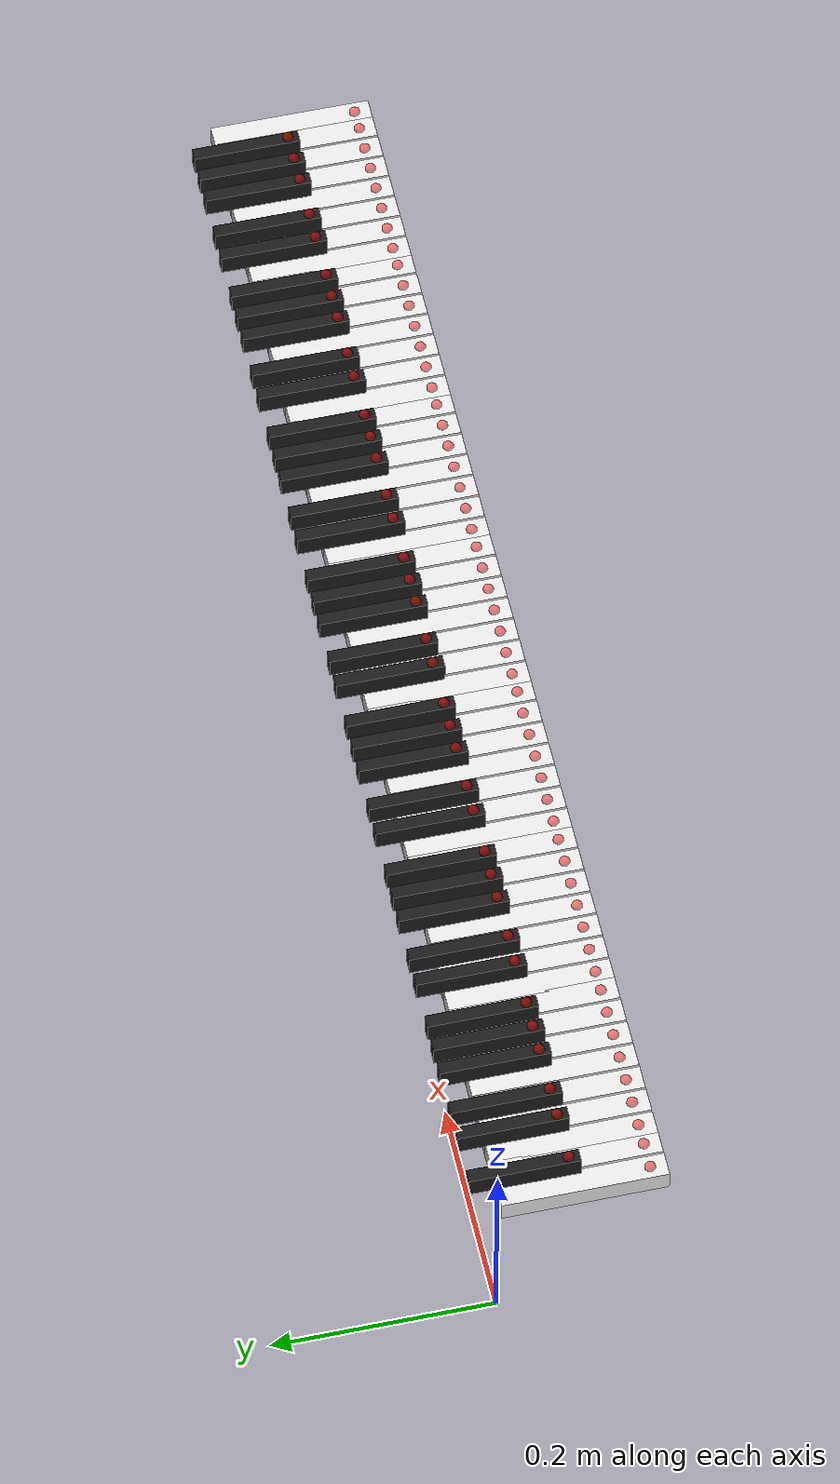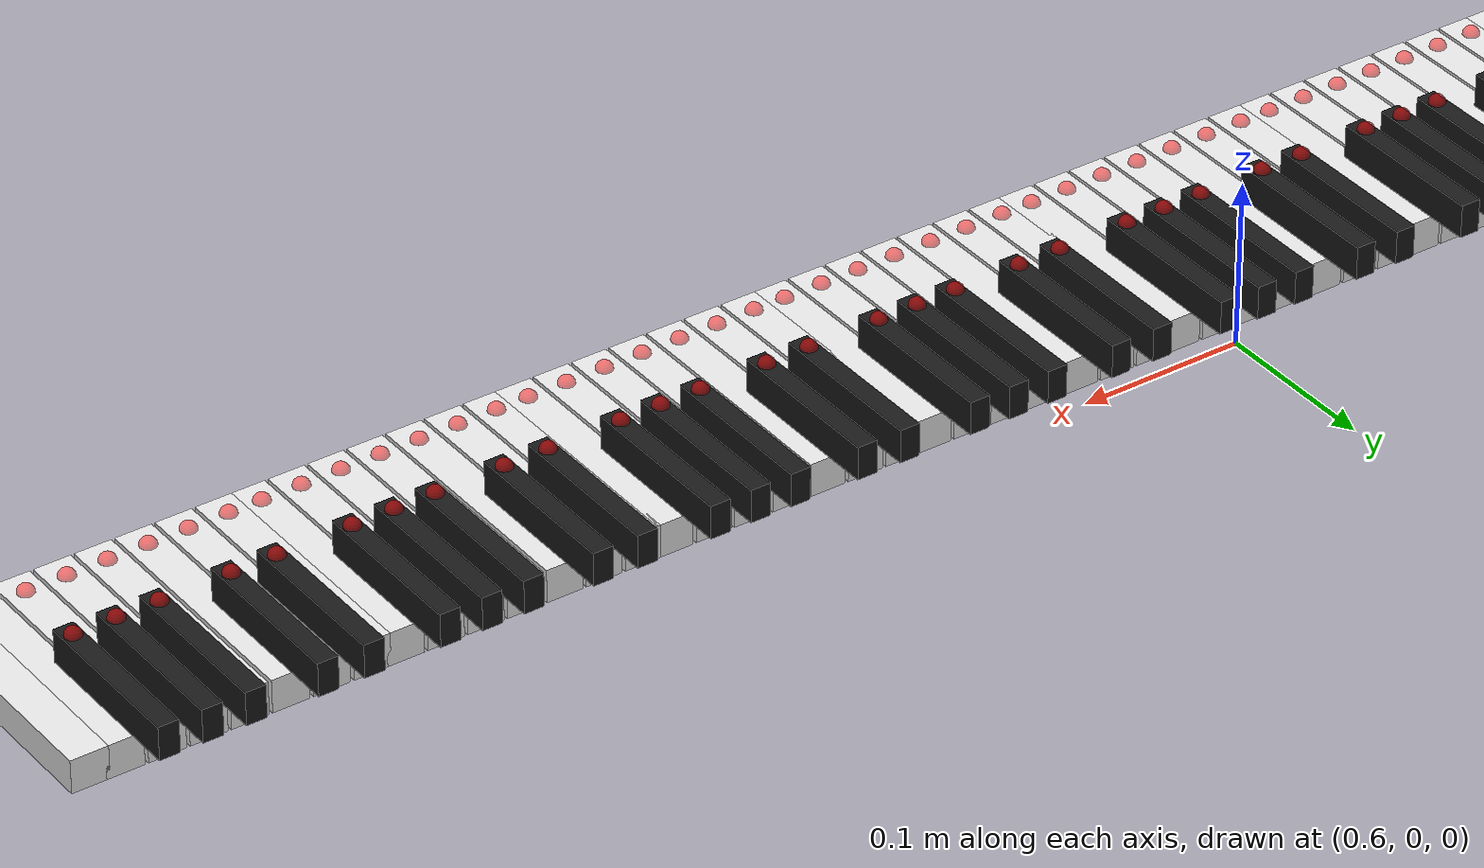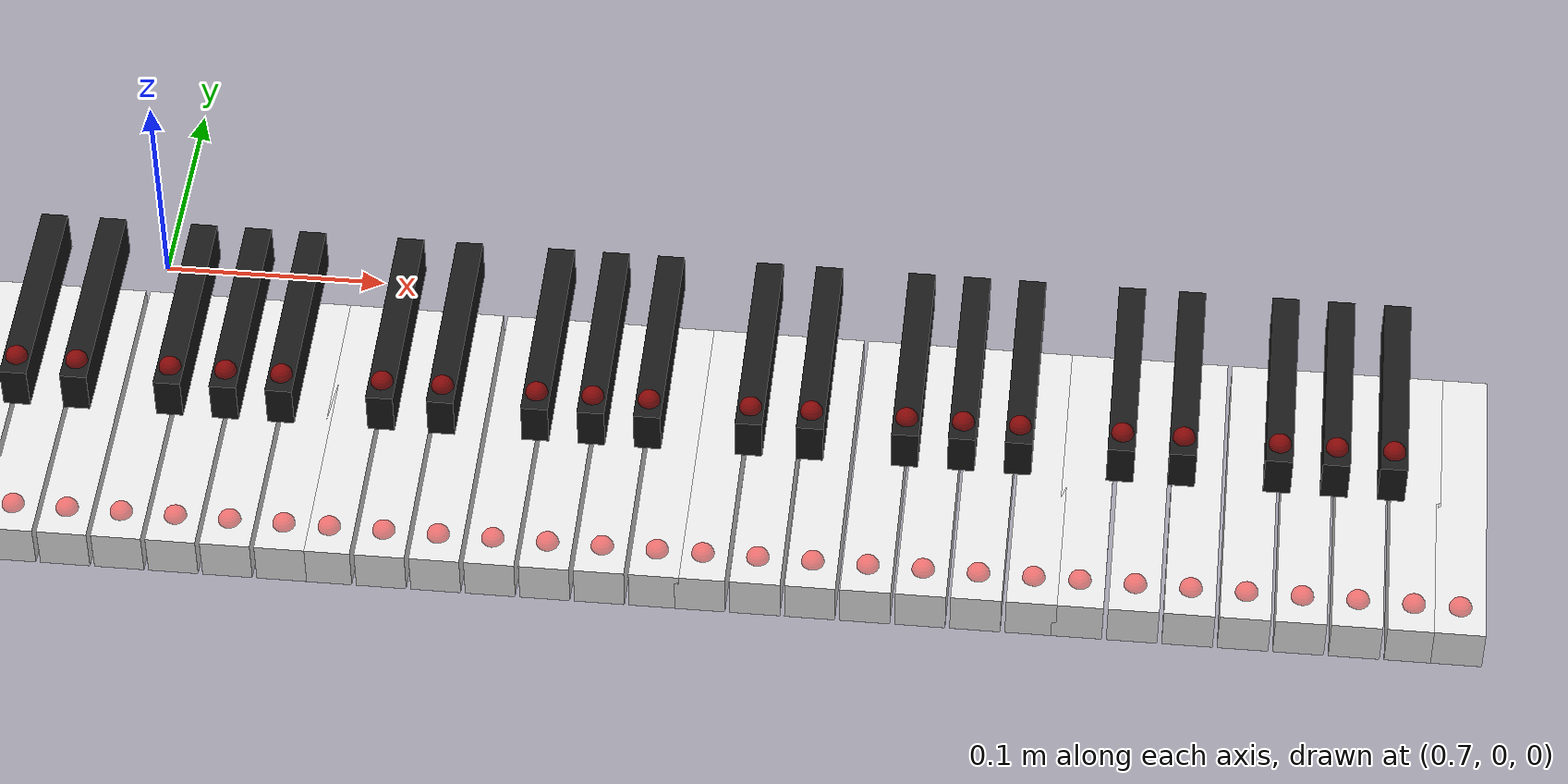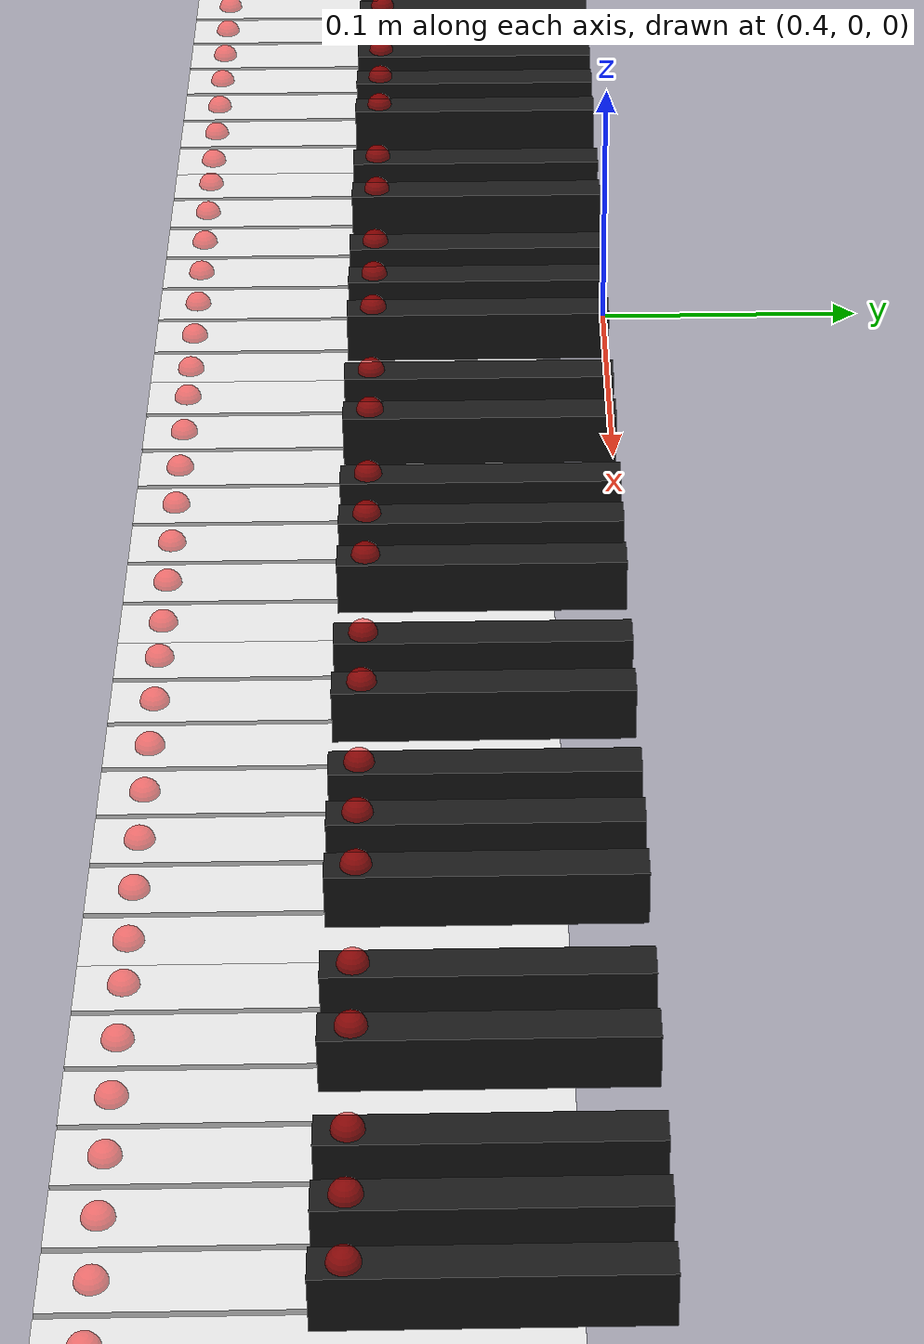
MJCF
<mujoco model="piano_88">
  <default>
    <geom rgba="0.9 0.9 0.9 1" type="box"/>
    <!-- Keys are slide joints with spring return -->
    <joint type="slide" axis="0 0 -1" limited="true" range="0 0.012" damping="0.5" stiffness="1000" armature="0.001"/>
  </default>
  <worldbody>

            <body name="key_21" pos="0.09999999999999999 -0.1 0">
                <joint name="k21"/>
                <geom size="0.011 0.075 0.01" pos="0 0 0"/>
                <site name="s_21" pos="0 -0.06 0.01" size="0.005" rgba="1 0 0 0.5"/>
            </body>
            <body name="key_22" pos="0.113 -0.05 0.02">
                <joint name="k22"/>
                <geom size="0.006 0.05 0.01" rgba="0.1 0.1 0.1 1"/>
                <site name="s_22" pos="0 -0.04 0.01" size="0.005" rgba="1 0 0 0.5"/>
            </body>
            <body name="key_23" pos="0.12399999999999999 -0.1 0">
                <joint name="k23"/>
                <geom size="0.011 0.075 0.01" pos="0 0 0"/>
                <site name="s_23" pos="0 -0.06 0.01" size="0.005" rgba="1 0 0 0.5"/>
            </body>
            <body name="key_24" pos="0.14400000000000002 -0.1 0">
                <joint name="k24"/>
                <geom size="0.011 0.075 0.01" pos="0 0 0"/>
                <site name="s_24" pos="0 -0.06 0.01" size="0.005" rgba="1 0 0 0.5"/>
            </body>
            <body name="key_25" pos="0.15800000000000003 -0.05 0.02">
                <joint name="k25"/>
                <geom size="0.006 0.05 0.01" rgba="0.1 0.1 0.1 1"/>
                <site name="s_25" pos="0 -0.04 0.01" size="0.005" rgba="1 0 0 0.5"/>
            </body>
            <body name="key_26" pos="0.168 -0.1 0">
                <joint name="k26"/>
                <geom size="0.011 0.075 0.01" pos="0 0 0"/>
                <site name="s_26" pos="0 -0.06 0.01" size="0.005" rgba="1 0 0 0.5"/>
            </body>
            <body name="key_27" pos="0.18500000000000003 -0.05 0.02">
                <joint name="k27"/>
                <geom size="0.006 0.05 0.01" rgba="0.1 0.1 0.1 1"/>
                <site name="s_27" pos="0 -0.04 0.01" size="0.005" rgba="1 0 0 0.5"/>
            </body>
            <body name="key_28" pos="0.19200000000000003 -0.1 0">
                <joint name="k28"/>
                <geom size="0.011 0.075 0.01" pos="0 0 0"/>
                <site name="s_28" pos="0 -0.06 0.01" size="0.005" rgba="1 0 0 0.5"/>
            </body>
            <body name="key_29" pos="0.216 -0.1 0">
                <joint name="k29"/>
                <geom size="0.011 0.075 0.01" pos="0 0 0"/>
                <site name="s_29" pos="0 -0.06 0.01" size="0.005" rgba="1 0 0 0.5"/>
            </body>
            <body name="key_30" pos="0.227 -0.05 0.02">
                <joint name="k30"/>
                <geom size="0.006 0.05 0.01" rgba="0.1 0.1 0.1 1"/>
                <site name="s_30" pos="0 -0.04 0.01" size="0.005" rgba="1 0 0 0.5"/>
            </body>
            <body name="key_31" pos="0.24000000000000002 -0.1 0">
                <joint name="k31"/>
                <geom size="0.011 0.075 0.01" pos="0 0 0"/>
                <site name="s_31" pos="0 -0.06 0.01" size="0.005" rgba="1 0 0 0.5"/>
            </body>
            <body name="key_32" pos="0.252 -0.05 0.02">
                <joint name="k32"/>
                <geom size="0.006 0.05 0.01" rgba="0.1 0.1 0.1 1"/>
                <site name="s_32" pos="0 -0.04 0.01" size="0.005" rgba="1 0 0 0.5"/>
            </body>
            <body name="key_33" pos="0.264 -0.1 0">
                <joint name="k33"/>
                <geom size="0.011 0.075 0.01" pos="0 0 0"/>
                <site name="s_33" pos="0 -0.06 0.01" size="0.005" rgba="1 0 0 0.5"/>
            </body>
            <body name="key_34" pos="0.277 -0.05 0.02">
                <joint name="k34"/>
                <geom size="0.006 0.05 0.01" rgba="0.1 0.1 0.1 1"/>
                <site name="s_34" pos="0 -0.04 0.01" size="0.005" rgba="1 0 0 0.5"/>
            </body>
            <body name="key_35" pos="0.288 -0.1 0">
                <joint name="k35"/>
                <geom size="0.011 0.075 0.01" pos="0 0 0"/>
                <site name="s_35" pos="0 -0.06 0.01" size="0.005" rgba="1 0 0 0.5"/>
            </body>
            <body name="key_36" pos="0.308 -0.1 0">
                <joint name="k36"/>
                <geom size="0.011 0.075 0.01" pos="0 0 0"/>
                <site name="s_36" pos="0 -0.06 0.01" size="0.005" rgba="1 0 0 0.5"/>
            </body>
            <body name="key_37" pos="0.322 -0.05 0.02">
                <joint name="k37"/>
                <geom size="0.006 0.05 0.01" rgba="0.1 0.1 0.1 1"/>
                <site name="s_37" pos="0 -0.04 0.01" size="0.005" rgba="1 0 0 0.5"/>
            </body>
            <body name="key_38" pos="0.332 -0.1 0">
                <joint name="k38"/>
                <geom size="0.011 0.075 0.01" pos="0 0 0"/>
                <site name="s_38" pos="0 -0.06 0.01" size="0.005" rgba="1 0 0 0.5"/>
            </body>
            <body name="key_39" pos="0.349 -0.05 0.02">
                <joint name="k39"/>
                <geom size="0.006 0.05 0.01" rgba="0.1 0.1 0.1 1"/>
                <site name="s_39" pos="0 -0.04 0.01" size="0.005" rgba="1 0 0 0.5"/>
            </body>
            <body name="key_40" pos="0.356 -0.1 0">
                <joint name="k40"/>
                <geom size="0.011 0.075 0.01" pos="0 0 0"/>
                <site name="s_40" pos="0 -0.06 0.01" size="0.005" rgba="1 0 0 0.5"/>
            </body>
            <body name="key_41" pos="0.38 -0.1 0">
                <joint name="k41"/>
                <geom size="0.011 0.075 0.01" pos="0 0 0"/>
                <site name="s_41" pos="0 -0.06 0.01" size="0.005" rgba="1 0 0 0.5"/>
            </body>
            <body name="key_42" pos="0.391 -0.05 0.02">
                <joint name="k42"/>
                <geom size="0.006 0.05 0.01" rgba="0.1 0.1 0.1 1"/>
                <site name="s_42" pos="0 -0.04 0.01" size="0.005" rgba="1 0 0 0.5"/>
            </body>
            <body name="key_43" pos="0.404 -0.1 0">
                <joint name="k43"/>
                <geom size="0.011 0.075 0.01" pos="0 0 0"/>
                <site name="s_43" pos="0 -0.06 0.01" size="0.005" rgba="1 0 0 0.5"/>
            </body>
            <body name="key_44" pos="0.416 -0.05 0.02">
                <joint name="k44"/>
                <geom size="0.006 0.05 0.01" rgba="0.1 0.1 0.1 1"/>
                <site name="s_44" pos="0 -0.04 0.01" size="0.005" rgba="1 0 0 0.5"/>
            </body>
            <body name="key_45" pos="0.428 -0.1 0">
                <joint name="k45"/>
                <geom size="0.011 0.075 0.01" pos="0 0 0"/>
                <site name="s_45" pos="0 -0.06 0.01" size="0.005" rgba="1 0 0 0.5"/>
            </body>
            <body name="key_46" pos="0.441 -0.05 0.02">
                <joint name="k46"/>
                <geom size="0.006 0.05 0.01" rgba="0.1 0.1 0.1 1"/>
                <site name="s_46" pos="0 -0.04 0.01" size="0.005" rgba="1 0 0 0.5"/>
            </body>
            <body name="key_47" pos="0.45199999999999996 -0.1 0">
                <joint name="k47"/>
                <geom size="0.011 0.075 0.01" pos="0 0 0"/>
                <site name="s_47" pos="0 -0.06 0.01" size="0.005" rgba="1 0 0 0.5"/>
            </body>
            <body name="key_48" pos="0.472 -0.1 0">
                <joint name="k48"/>
                <geom size="0.011 0.075 0.01" pos="0 0 0"/>
                <site name="s_48" pos="0 -0.06 0.01" size="0.005" rgba="1 0 0 0.5"/>
            </body>
            <body name="key_49" pos="0.486 -0.05 0.02">
                <joint name="k49"/>
                <geom size="0.006 0.05 0.01" rgba="0.1 0.1 0.1 1"/>
                <site name="s_49" pos="0 -0.04 0.01" size="0.005" rgba="1 0 0 0.5"/>
            </body>
            <body name="key_50" pos="0.496 -0.1 0">
                <joint name="k50"/>
                <geom size="0.011 0.075 0.01" pos="0 0 0"/>
                <site name="s_50" pos="0 -0.06 0.01" size="0.005" rgba="1 0 0 0.5"/>
            </body>
            <body name="key_51" pos="0.513 -0.05 0.02">
                <joint name="k51"/>
                <geom size="0.006 0.05 0.01" rgba="0.1 0.1 0.1 1"/>
                <site name="s_51" pos="0 -0.04 0.01" size="0.005" rgba="1 0 0 0.5"/>
            </body>
            <body name="key_52" pos="0.52 -0.1 0">
                <joint name="k52"/>
                <geom size="0.011 0.075 0.01" pos="0 0 0"/>
                <site name="s_52" pos="0 -0.06 0.01" size="0.005" rgba="1 0 0 0.5"/>
            </body>
            <body name="key_53" pos="0.5439999999999999 -0.1 0">
                <joint name="k53"/>
                <geom size="0.011 0.075 0.01" pos="0 0 0"/>
                <site name="s_53" pos="0 -0.06 0.01" size="0.005" rgba="1 0 0 0.5"/>
            </body>
            <body name="key_54" pos="0.5549999999999999 -0.05 0.02">
                <joint name="k54"/>
                <geom size="0.006 0.05 0.01" rgba="0.1 0.1 0.1 1"/>
                <site name="s_54" pos="0 -0.04 0.01" size="0.005" rgba="1 0 0 0.5"/>
            </body>
            <body name="key_55" pos="0.568 -0.1 0">
                <joint name="k55"/>
                <geom size="0.011 0.075 0.01" pos="0 0 0"/>
                <site name="s_55" pos="0 -0.06 0.01" size="0.005" rgba="1 0 0 0.5"/>
            </body>
            <body name="key_56" pos="0.58 -0.05 0.02">
                <joint name="k56"/>
                <geom size="0.006 0.05 0.01" rgba="0.1 0.1 0.1 1"/>
                <site name="s_56" pos="0 -0.04 0.01" size="0.005" rgba="1 0 0 0.5"/>
            </body>
            <body name="key_57" pos="0.592 -0.1 0">
                <joint name="k57"/>
                <geom size="0.011 0.075 0.01" pos="0 0 0"/>
                <site name="s_57" pos="0 -0.06 0.01" size="0.005" rgba="1 0 0 0.5"/>
            </body>
            <body name="key_58" pos="0.605 -0.05 0.02">
                <joint name="k58"/>
                <geom size="0.006 0.05 0.01" rgba="0.1 0.1 0.1 1"/>
                <site name="s_58" pos="0 -0.04 0.01" size="0.005" rgba="1 0 0 0.5"/>
            </body>
            <body name="key_59" pos="0.616 -0.1 0">
                <joint name="k59"/>
                <geom size="0.011 0.075 0.01" pos="0 0 0"/>
                <site name="s_59" pos="0 -0.06 0.01" size="0.005" rgba="1 0 0 0.5"/>
            </body>
            <body name="key_60" pos="0.636 -0.1 0">
                <joint name="k60"/>
                <geom size="0.011 0.075 0.01" pos="0 0 0"/>
                <site name="s_60" pos="0 -0.06 0.01" size="0.005" rgba="1 0 0 0.5"/>
            </body>
            <body name="key_61" pos="0.65 -0.05 0.02">
                <joint name="k61"/>
                <geom size="0.006 0.05 0.01" rgba="0.1 0.1 0.1 1"/>
                <site name="s_61" pos="0 -0.04 0.01" size="0.005" rgba="1 0 0 0.5"/>
            </body>
            <body name="key_62" pos="0.66 -0.1 0">
                <joint name="k62"/>
                <geom size="0.011 0.075 0.01" pos="0 0 0"/>
                <site name="s_62" pos="0 -0.06 0.01" size="0.005" rgba="1 0 0 0.5"/>
            </body>
            <body name="key_63" pos="0.677 -0.05 0.02">
                <joint name="k63"/>
                <geom size="0.006 0.05 0.01" rgba="0.1 0.1 0.1 1"/>
                <site name="s_63" pos="0 -0.04 0.01" size="0.005" rgba="1 0 0 0.5"/>
            </body>
            <body name="key_64" pos="0.684 -0.1 0">
                <joint name="k64"/>
                <geom size="0.011 0.075 0.01" pos="0 0 0"/>
                <site name="s_64" pos="0 -0.06 0.01" size="0.005" rgba="1 0 0 0.5"/>
            </body>
            <body name="key_65" pos="0.708 -0.1 0">
                <joint name="k65"/>
                <geom size="0.011 0.075 0.01" pos="0 0 0"/>
                <site name="s_65" pos="0 -0.06 0.01" size="0.005" rgba="1 0 0 0.5"/>
            </body>
            <body name="key_66" pos="0.719 -0.05 0.02">
                <joint name="k66"/>
                <geom size="0.006 0.05 0.01" rgba="0.1 0.1 0.1 1"/>
                <site name="s_66" pos="0 -0.04 0.01" size="0.005" rgba="1 0 0 0.5"/>
            </body>
            <body name="key_67" pos="0.732 -0.1 0">
                <joint name="k67"/>
                <geom size="0.011 0.075 0.01" pos="0 0 0"/>
                <site name="s_67" pos="0 -0.06 0.01" size="0.005" rgba="1 0 0 0.5"/>
            </body>
            <body name="key_68" pos="0.744 -0.05 0.02">
                <joint name="k68"/>
                <geom size="0.006 0.05 0.01" rgba="0.1 0.1 0.1 1"/>
                <site name="s_68" pos="0 -0.04 0.01" size="0.005" rgba="1 0 0 0.5"/>
            </body>
            <body name="key_69" pos="0.756 -0.1 0">
                <joint name="k69"/>
                <geom size="0.011 0.075 0.01" pos="0 0 0"/>
                <site name="s_69" pos="0 -0.06 0.01" size="0.005" rgba="1 0 0 0.5"/>
            </body>
            <body name="key_70" pos="0.769 -0.05 0.02">
                <joint name="k70"/>
                <geom size="0.006 0.05 0.01" rgba="0.1 0.1 0.1 1"/>
                <site name="s_70" pos="0 -0.04 0.01" size="0.005" rgba="1 0 0 0.5"/>
            </body>
            <body name="key_71" pos="0.78 -0.1 0">
                <joint name="k71"/>
                <geom size="0.011 0.075 0.01" pos="0 0 0"/>
                <site name="s_71" pos="0 -0.06 0.01" size="0.005" rgba="1 0 0 0.5"/>
            </body>
            <body name="key_72" pos="0.8 -0.1 0">
                <joint name="k72"/>
                <geom size="0.011 0.075 0.01" pos="0 0 0"/>
                <site name="s_72" pos="0 -0.06 0.01" size="0.005" rgba="1 0 0 0.5"/>
            </body>
            <body name="key_73" pos="0.8140000000000001 -0.05 0.02">
                <joint name="k73"/>
                <geom size="0.006 0.05 0.01" rgba="0.1 0.1 0.1 1"/>
                <site name="s_73" pos="0 -0.04 0.01" size="0.005" rgba="1 0 0 0.5"/>
            </body>
            <body name="key_74" pos="0.8240000000000001 -0.1 0">
                <joint name="k74"/>
                <geom size="0.011 0.075 0.01" pos="0 0 0"/>
                <site name="s_74" pos="0 -0.06 0.01" size="0.005" rgba="1 0 0 0.5"/>
            </body>
            <body name="key_75" pos="0.8410000000000001 -0.05 0.02">
                <joint name="k75"/>
                <geom size="0.006 0.05 0.01" rgba="0.1 0.1 0.1 1"/>
                <site name="s_75" pos="0 -0.04 0.01" size="0.005" rgba="1 0 0 0.5"/>
            </body>
            <body name="key_76" pos="0.8480000000000001 -0.1 0">
                <joint name="k76"/>
                <geom size="0.011 0.075 0.01" pos="0 0 0"/>
                <site name="s_76" pos="0 -0.06 0.01" size="0.005" rgba="1 0 0 0.5"/>
            </body>
            <body name="key_77" pos="0.872 -0.1 0">
                <joint name="k77"/>
                <geom size="0.011 0.075 0.01" pos="0 0 0"/>
                <site name="s_77" pos="0 -0.06 0.01" size="0.005" rgba="1 0 0 0.5"/>
            </body>
            <body name="key_78" pos="0.883 -0.05 0.02">
                <joint name="k78"/>
                <geom size="0.006 0.05 0.01" rgba="0.1 0.1 0.1 1"/>
                <site name="s_78" pos="0 -0.04 0.01" size="0.005" rgba="1 0 0 0.5"/>
            </body>
            <body name="key_79" pos="0.896 -0.1 0">
                <joint name="k79"/>
                <geom size="0.011 0.075 0.01" pos="0 0 0"/>
                <site name="s_79" pos="0 -0.06 0.01" size="0.005" rgba="1 0 0 0.5"/>
            </body>
            <body name="key_80" pos="0.908 -0.05 0.02">
                <joint name="k80"/>
                <geom size="0.006 0.05 0.01" rgba="0.1 0.1 0.1 1"/>
                <site name="s_80" pos="0 -0.04 0.01" size="0.005" rgba="1 0 0 0.5"/>
            </body>
            <body name="key_81" pos="0.92 -0.1 0">
                <joint name="k81"/>
                <geom size="0.011 0.075 0.01" pos="0 0 0"/>
                <site name="s_81" pos="0 -0.06 0.01" size="0.005" rgba="1 0 0 0.5"/>
            </body>
            <body name="key_82" pos="0.933 -0.05 0.02">
                <joint name="k82"/>
                <geom size="0.006 0.05 0.01" rgba="0.1 0.1 0.1 1"/>
                <site name="s_82" pos="0 -0.04 0.01" size="0.005" rgba="1 0 0 0.5"/>
            </body>
            <body name="key_83" pos="0.9440000000000001 -0.1 0">
                <joint name="k83"/>
                <geom size="0.011 0.075 0.01" pos="0 0 0"/>
                <site name="s_83" pos="0 -0.06 0.01" size="0.005" rgba="1 0 0 0.5"/>
            </body>
            <body name="key_84" pos="0.964 -0.1 0">
                <joint name="k84"/>
                <geom size="0.011 0.075 0.01" pos="0 0 0"/>
                <site name="s_84" pos="0 -0.06 0.01" size="0.005" rgba="1 0 0 0.5"/>
            </body>
            <body name="key_85" pos="0.978 -0.05 0.02">
                <joint name="k85"/>
                <geom size="0.006 0.05 0.01" rgba="0.1 0.1 0.1 1"/>
                <site name="s_85" pos="0 -0.04 0.01" size="0.005" rgba="1 0 0 0.5"/>
            </body>
            <body name="key_86" pos="0.988 -0.1 0">
                <joint name="k86"/>
                <geom size="0.011 0.075 0.01" pos="0 0 0"/>
                <site name="s_86" pos="0 -0.06 0.01" size="0.005" rgba="1 0 0 0.5"/>
            </body>
            <body name="key_87" pos="1.005 -0.05 0.02">
                <joint name="k87"/>
                <geom size="0.006 0.05 0.01" rgba="0.1 0.1 0.1 1"/>
                <site name="s_87" pos="0 -0.04 0.01" size="0.005" rgba="1 0 0 0.5"/>
            </body>
            <body name="key_88" pos="1.012 -0.1 0">
                <joint name="k88"/>
                <geom size="0.011 0.075 0.01" pos="0 0 0"/>
                <site name="s_88" pos="0 -0.06 0.01" size="0.005" rgba="1 0 0 0.5"/>
            </body>
            <body name="key_89" pos="1.036 -0.1 0">
                <joint name="k89"/>
                <geom size="0.011 0.075 0.01" pos="0 0 0"/>
                <site name="s_89" pos="0 -0.06 0.01" size="0.005" rgba="1 0 0 0.5"/>
            </body>
            <body name="key_90" pos="1.047 -0.05 0.02">
                <joint name="k90"/>
                <geom size="0.006 0.05 0.01" rgba="0.1 0.1 0.1 1"/>
                <site name="s_90" pos="0 -0.04 0.01" size="0.005" rgba="1 0 0 0.5"/>
            </body>
            <body name="key_91" pos="1.06 -0.1 0">
                <joint name="k91"/>
                <geom size="0.011 0.075 0.01" pos="0 0 0"/>
                <site name="s_91" pos="0 -0.06 0.01" size="0.005" rgba="1 0 0 0.5"/>
            </body>
            <body name="key_92" pos="1.072 -0.05 0.02">
                <joint name="k92"/>
                <geom size="0.006 0.05 0.01" rgba="0.1 0.1 0.1 1"/>
                <site name="s_92" pos="0 -0.04 0.01" size="0.005" rgba="1 0 0 0.5"/>
            </body>
            <body name="key_93" pos="1.084 -0.1 0">
                <joint name="k93"/>
                <geom size="0.011 0.075 0.01" pos="0 0 0"/>
                <site name="s_93" pos="0 -0.06 0.01" size="0.005" rgba="1 0 0 0.5"/>
            </body>
            <body name="key_94" pos="1.097 -0.05 0.02">
                <joint name="k94"/>
                <geom size="0.006 0.05 0.01" rgba="0.1 0.1 0.1 1"/>
                <site name="s_94" pos="0 -0.04 0.01" size="0.005" rgba="1 0 0 0.5"/>
            </body>
            <body name="key_95" pos="1.1079999999999999 -0.1 0">
                <joint name="k95"/>
                <geom size="0.011 0.075 0.01" pos="0 0 0"/>
                <site name="s_95" pos="0 -0.06 0.01" size="0.005" rgba="1 0 0 0.5"/>
            </body>
            <body name="key_96" pos="1.1280000000000001 -0.1 0">
                <joint name="k96"/>
                <geom size="0.011 0.075 0.01" pos="0 0 0"/>
                <site name="s_96" pos="0 -0.06 0.01" size="0.005" rgba="1 0 0 0.5"/>
            </body>
            <body name="key_97" pos="1.1420000000000001 -0.05 0.02">
                <joint name="k97"/>
                <geom size="0.006 0.05 0.01" rgba="0.1 0.1 0.1 1"/>
                <site name="s_97" pos="0 -0.04 0.01" size="0.005" rgba="1 0 0 0.5"/>
            </body>
            <body name="key_98" pos="1.1520000000000001 -0.1 0">
                <joint name="k98"/>
                <geom size="0.011 0.075 0.01" pos="0 0 0"/>
                <site name="s_98" pos="0 -0.06 0.01" size="0.005" rgba="1 0 0 0.5"/>
            </body>
            <body name="key_99" pos="1.169 -0.05 0.02">
                <joint name="k99"/>
                <geom size="0.006 0.05 0.01" rgba="0.1 0.1 0.1 1"/>
                <site name="s_99" pos="0 -0.04 0.01" size="0.005" rgba="1 0 0 0.5"/>
            </body>
            <body name="key_100" pos="1.1760000000000002 -0.1 0">
                <joint name="k100"/>
                <geom size="0.011 0.075 0.01" pos="0 0 0"/>
                <site name="s_100" pos="0 -0.06 0.01" size="0.005" rgba="1 0 0 0.5"/>
            </body>
            <body name="key_101" pos="1.2000000000000002 -0.1 0">
                <joint name="k101"/>
                <geom size="0.011 0.075 0.01" pos="0 0 0"/>
                <site name="s_101" pos="0 -0.06 0.01" size="0.005" rgba="1 0 0 0.5"/>
            </body>
            <body name="key_102" pos="1.211 -0.05 0.02">
                <joint name="k102"/>
                <geom size="0.006 0.05 0.01" rgba="0.1 0.1 0.1 1"/>
                <site name="s_102" pos="0 -0.04 0.01" size="0.005" rgba="1 0 0 0.5"/>
            </body>
            <body name="key_103" pos="1.2240000000000002 -0.1 0">
                <joint name="k103"/>
                <geom size="0.011 0.075 0.01" pos="0 0 0"/>
                <site name="s_103" pos="0 -0.06 0.01" size="0.005" rgba="1 0 0 0.5"/>
            </body>
            <body name="key_104" pos="1.2360000000000002 -0.05 0.02">
                <joint name="k104"/>
                <geom size="0.006 0.05 0.01" rgba="0.1 0.1 0.1 1"/>
                <site name="s_104" pos="0 -0.04 0.01" size="0.005" rgba="1 0 0 0.5"/>
            </body>
            <body name="key_105" pos="1.2480000000000002 -0.1 0">
                <joint name="k105"/>
                <geom size="0.011 0.075 0.01" pos="0 0 0"/>
                <site name="s_105" pos="0 -0.06 0.01" size="0.005" rgba="1 0 0 0.5"/>
            </body>
            <body name="key_106" pos="1.2610000000000001 -0.05 0.02">
                <joint name="k106"/>
                <geom size="0.006 0.05 0.01" rgba="0.1 0.1 0.1 1"/>
                <site name="s_106" pos="0 -0.04 0.01" size="0.005" rgba="1 0 0 0.5"/>
            </body>
            <body name="key_107" pos="1.272 -0.1 0">
                <joint name="k107"/>
                <geom size="0.011 0.075 0.01" pos="0 0 0"/>
                <site name="s_107" pos="0 -0.06 0.01" size="0.005" rgba="1 0 0 0.5"/>
            </body>
            <body name="key_108" pos="1.292 -0.1 0">
                <joint name="k108"/>
                <geom size="0.011 0.075 0.01" pos="0 0 0"/>
                <site name="s_108" pos="0 -0.06 0.01" size="0.005" rgba="1 0 0 0.5"/>
            </body>
  </worldbody>
</mujoco>
